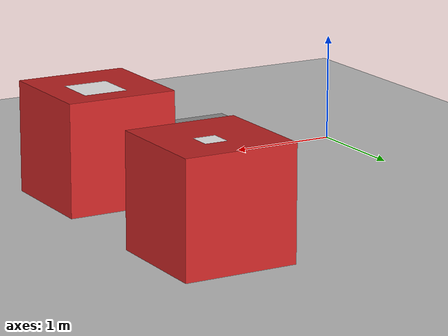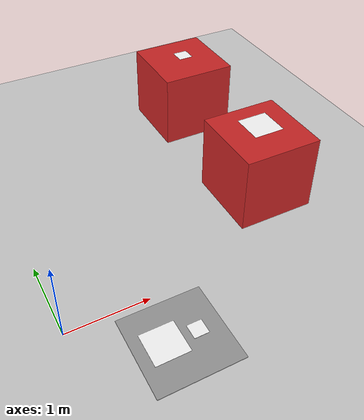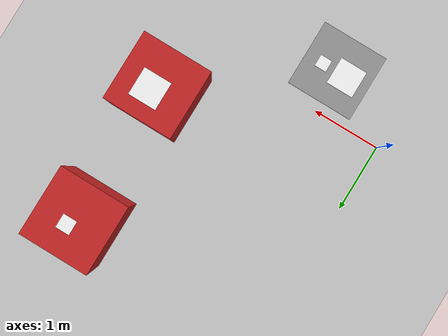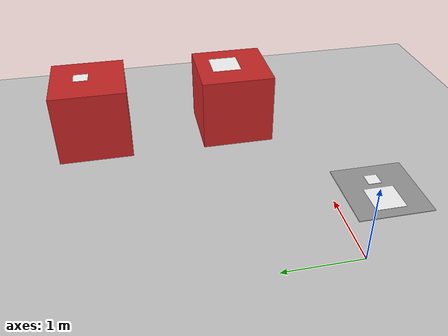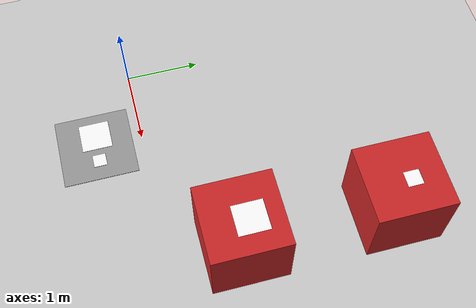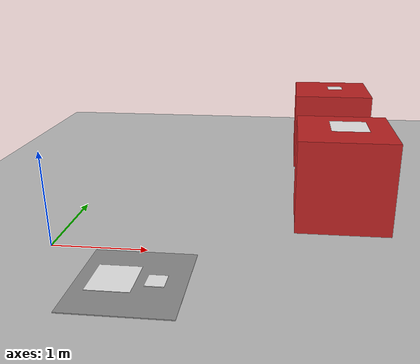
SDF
<sdf version="1.5">
 <world name="default">
  <include><uri>model://sun</uri></include>
  <include><uri>model://ground_plane</uri></include>
  <include><uri>model://asphalt_plane</uri></include>
  <physics name="default_physics" default="0" type="ode">
   <gravity>0 0 -9.8066</gravity>
   <ode>
    <solver>
     <type>quick</type>
     <iters>10</iters>
     <sor>1.3</sor>
     <use_dynamic_moi_rescaling>0</use_dynamic_moi_rescaling>
    </solver>
    <constraints>
     <cfm>0</cfm>
     <erp>0.2</erp>
     <contact_max_correcting_vel>100</contact_max_correcting_vel>
     <contact_surface_layer>0.001</contact_surface_layer>
    </constraints>
   </ode>
   <max_step_size>0.004</max_step_size>
   <real_time_factor>1</real_time_factor>
   <real_time_update_rate>250</real_time_update_rate>
   <magnetic_field>6.0e-6 2.3e-5 -4.2e-5</magnetic_field>
  </physics>
  <model name="unit_box">
   <link name="link">
    <inertial>
     <mass>1</mass>
     <inertia>
      <ixx>0.166667</ixx>
      <ixy>0</ixy>
      <ixz>0</ixz>
      <iyy>0.166667</iyy>
      <iyz>0</iyz>
      <izz>0.166667</izz>
     </inertia>
    </inertial>
    <visual name="ModelPreview_6::link::visual_1">
     <geometry><box><size>1 1 1</size></box></geometry>
     <material>
      <script><name>Gazebo/Red</name><uri>file://media/materials/scripts/gazebo.material</uri></script>
      <shader type="pixel"><normal_map>__default__</normal_map></shader>
      <ambient>1 0.3 0.3 1</ambient>
      <diffuse>1 0.7 0.7 1</diffuse>
      <specular>1 0.01 0.01 1</specular>
      <emissive>1 0 0 1</emissive>
     </material>
    </visual>
    <visual name="visual"><geometry><box><size>1 1 1</size></box></geometry></visual>
    <collision name="collision">
     <geometry><box><size>1 1 1</size></box></geometry>
     <surface>
      <friction>
       <ode><mu>1</mu><mu2>1</mu2><fdir1>0 0 0</fdir1><slip1>0</slip1><slip2>0</slip2></ode>
       <torsional>
        <coefficient>1</coefficient>
        <patch_radius>0</patch_radius>
        <surface_radius>0</surface_radius>
        <use_patch_radius>1</use_patch_radius>
        <ode><slip>0</slip></ode>
       </torsional>
      </friction>
      <bounce><restitution_coefficient>0</restitution_coefficient><threshold>1e+06</threshold></bounce>
      <contact>
       <collide_without_contact>0</collide_without_contact>
       <collide_without_contact_bitmask>1</collide_without_contact_bitmask>
       <collide_bitmask>1</collide_bitmask>
       <ode>
        <soft_cfm>0</soft_cfm>
        <soft_erp>0.2</soft_erp>
        <kp>1e+13</kp>
        <kd>1</kd>
        <max_vel>0.01</max_vel>
        <min_depth>0</min_depth>
       </ode>
       <bullet>
        <split_impulse>1</split_impulse>
        <split_impulse_penetration_threshold>-0.01</split_impulse_penetration_threshold>
        <soft_cfm>0</soft_cfm>
        <soft_erp>0.2</soft_erp>
        <kp>1e+13</kp>
        <kd>1</kd>
       </bullet>
      </contact>
     </surface>
    </collision>
   </link>
   <static>0</static>
   <pose>2.94791 2.90993 0.550001 -2.2e-05 -4e-06 -0.001749</pose>
  </model>
  <model name="aruco_visual_marker_7">
   <pose>3 3 1.05 0 -0 0</pose>
   <link name="marker">
    <visual name="visual">
     <geometry><box><size>0.2 0.2 0.001</size></box></geometry>
     <material>
      <script>
       <uri>model://aruco_visual_marker_7/materials/scripts</uri>
       <uri>model://aruco_visual_marker_7/materials/textures</uri>
       <name>ArucoVisualMarker7/Marker</name>
      </script>
      <ambient>1 1 1 1</ambient>
      <diffuse>1 1 1 1</diffuse>
      <specular>0 0 0 1</specular>
      <emissive>1 1 1 0</emissive>
      <shader type="vertex"><normal_map>__default__</normal_map></shader>
     </material>
    </visual>
    <collision name="collision"><geometry><box><size>0.1778 0.1778 0</size></box></geometry></collision>
   </link>
   <link name="marker_pad">
    <pose frame="marker">0 0 -1e-05 0 -0 0</pose>
    <visual name="visual">
     <geometry><box><size>0.1778 0.1778 0</size></box></geometry>
     <material>
      <lighting>1</lighting>
      <script><uri>file://media/materials/scripts/gazebo.material</uri><name>Gazebo/White</name></script>
      <ambient>0.3 0.3 0.3 1</ambient>
      <diffuse>0.7 0.7 0.7 1</diffuse>
      <specular>0.01 0.01 0.01 1</specular>
      <emissive>1 1 1 0</emissive>
      <shader type="vertex"><normal_map>__default__</normal_map></shader>
     </material>
    </visual>
    <collision name="collision"><geometry><box><size>0.1778 0.1778 0</size></box></geometry></collision>
   </link>
   <joint name="marker_JOINT_marker_pad" type="revolute">
    <parent>marker</parent>
    <child>marker_pad</child>
    <axis>
     <xyz>0 0 1</xyz>
     <limit><upper>0</upper><lower>0</lower></limit>
     <use_parent_model_frame>0</use_parent_model_frame>
     <dynamics><spring_reference>0</spring_reference><spring_stiffness>0</spring_stiffness></dynamics>
    </axis>
   </joint>
   <static>1</static>
   <pose>1.46856 0.501725 0 0 -0 0</pose>
  </model>
  <model name="unit_box_2">
   <link name="link">
    <inertial>
     <mass>1</mass>
     <inertia>
      <ixx>0.166667</ixx>
      <ixy>0</ixy>
      <ixz>0</ixz>
      <iyy>0.166667</iyy>
      <iyz>0</iyz>
      <izz>0.166667</izz>
     </inertia>
    </inertial>
    <visual name="ModelPreview_6::link::visual_1">
     <geometry><box><size>1 1 1</size></box></geometry>
     <material>
      <script><name>Gazebo/Red</name><uri>file://media/materials/scripts/gazebo.material</uri></script>
      <shader type="pixel"><normal_map>__default__</normal_map></shader>
      <ambient>1 0.3 0.3 1</ambient>
      <diffuse>1 0.7 0.7 1</diffuse>
      <specular>1 0.01 0.01 1</specular>
      <emissive>1 0 0 1</emissive>
     </material>
    </visual>
    <visual name="visual"><geometry><box><size>1 1 1</size></box></geometry></visual>
    <collision name="collision">
     <geometry><box><size>1 1 1</size></box></geometry>
     <surface>
      <friction>
       <ode><mu>1</mu><mu2>1</mu2><fdir1>0 0 0</fdir1><slip1>0</slip1><slip2>0</slip2></ode>
       <torsional>
        <coefficient>1</coefficient>
        <patch_radius>0</patch_radius>
        <surface_radius>0</surface_radius>
        <use_patch_radius>1</use_patch_radius>
        <ode><slip>0</slip></ode>
       </torsional>
      </friction>
      <bounce><restitution_coefficient>0</restitution_coefficient><threshold>1e+06</threshold></bounce>
      <contact>
       <collide_without_contact>0</collide_without_contact>
       <collide_without_contact_bitmask>1</collide_without_contact_bitmask>
       <collide_bitmask>1</collide_bitmask>
       <ode>
        <soft_cfm>0</soft_cfm>
        <soft_erp>0.2</soft_erp>
        <kp>1e+13</kp>
        <kd>1</kd>
        <max_vel>0.01</max_vel>
        <min_depth>0</min_depth>
       </ode>
       <bullet>
        <split_impulse>1</split_impulse>
        <split_impulse_penetration_threshold>-0.01</split_impulse_penetration_threshold>
        <soft_cfm>0</soft_cfm>
        <soft_erp>0.2</soft_erp>
        <kp>1e+13</kp>
        <kd>1</kd>
       </bullet>
      </contact>
     </surface>
    </collision>
   </link>
   <static>0</static>
   <pose>2.94791 0.909933 0.550001 -2.2e-05 -4e-06 -0.001749</pose>
  </model>
  <model name="aruco_visual_marker_7_2">
   <pose>3 1 1.05 0 -0 0</pose>
   <link name="marker">
    <visual name="visual">
     <geometry><box><size>0.4 0.4 0.001</size></box></geometry>
     <material>
      <script>
       <uri>model://aruco_visual_marker_7/materials/scripts</uri>
       <uri>model://aruco_visual_marker_7/materials/textures</uri>
       <name>ArucoVisualMarker7/Marker</name>
      </script>
      <ambient>1 1 1 1</ambient>
      <diffuse>1 1 1 1</diffuse>
      <specular>0 0 0 1</specular>
      <emissive>1 1 1 0</emissive>
      <shader type="vertex"><normal_map>__default__</normal_map></shader>
     </material>
    </visual>
    <collision name="collision"><geometry><box><size>0.1778 0.1778 0</size></box></geometry></collision>
   </link>
   <link name="marker_pad_2">
    <pose frame="marker">0 0 -1e-05 0 -0 0</pose>
    <visual name="visual">
     <geometry><box><size>0.1778 0.1778 0</size></box></geometry>
     <material>
      <lighting>1</lighting>
      <script><uri>file://media/materials/scripts/gazebo.material</uri><name>Gazebo/White</name></script>
      <ambient>0.3 0.3 0.3 1</ambient>
      <diffuse>0.7 0.7 0.7 1</diffuse>
      <specular>0.01 0.01 0.01 1</specular>
      <emissive>1 1 1 0</emissive>
      <shader type="vertex"><normal_map>__default__</normal_map></shader>
     </material>
    </visual>
    <collision name="collision"><geometry><box><size>0.1778 0.1778 0</size></box></geometry></collision>
   </link>
   <joint name="marker_JOINT_marker_pad_2" type="revolute">
    <parent>marker</parent>
    <child>marker_pad</child>
    <axis>
     <xyz>0 0 1</xyz>
     <limit><upper>0</upper><lower>0</lower></limit>
     <use_parent_model_frame>0</use_parent_model_frame>
     <dynamics><spring_reference>0</spring_reference><spring_stiffness>0</spring_stiffness></dynamics>
    </axis>
   </joint>
   <static>1</static>
   <pose>1.46856 0.501725 0 0 -0 0</pose>
  </model>
  <model name="aruco_visual_marker_3">
   <link name="marker">
    <visual name="visual">
     <geometry><box><size>0.40894 0.40894 0.00398573</size></box></geometry>
     <material>
      <script>
       <uri>model://aruco_visual_marker_3/materials/scripts</uri>
       <uri>model://aruco_visual_marker_3/materials/textures</uri>
       <name>ArucoVisualMarker3/Marker</name>
      </script>
      <ambient>1 1 1 1</ambient>
      <diffuse>1 1 1 1</diffuse>
      <specular>0 0 0 1</specular>
      <emissive>1 1 1 0</emissive>
      <shader type="vertex"><normal_map>__default__</normal_map></shader>
     </material>
    </visual>
    <collision name="collision">
     <geometry><box><size>0.40894 0.40894 0.00398573</size></box></geometry>
    </collision>
   </link>
   <link name="marker_pad">
    <pose relative_to="marker">0 0 -1e-05 0 -0 0</pose>
    <visual name="visual">
     <geometry><box><size>0.40894 0.40894 0.00398573</size></box></geometry>
     <material>
      <lighting>1</lighting>
      <script><uri>file://media/materials/scripts/gazebo.material</uri><name>Gazebo/White</name></script>
      <ambient>0.3 0.3 0.3 1</ambient>
      <diffuse>0.7 0.7 0.7 1</diffuse>
      <specular>0.01 0.01 0.01 1</specular>
      <emissive>1 1 1 0</emissive>
      <shader type="vertex"><normal_map>__default__</normal_map></shader>
     </material>
    </visual>
    <collision name="collision">
     <geometry><box><size>0.40894 0.40894 0.00398573</size></box></geometry>
    </collision>
   </link>
   <joint name="marker_JOINT_marker_pad" type="revolute">
    <parent>marker</parent>
    <child>marker_pad</child>
    <axis>
     <xyz>0 0 1</xyz>
     <limit><upper>0</upper><lower>0</lower></limit>
     <dynamics><spring_reference>0</spring_reference><spring_stiffness>0</spring_stiffness></dynamics>
    </axis>
   </joint>
   <static>1</static>
   <pose>0.866161 -0.616978 0.065668 0 -0 0</pose>
  </model>
  <model name="unit_box_0">
   <pose>1.02863 -0.634658 0.054604 0 0 -0.000707</pose>
   <link name="link">
    <inertial>
     <mass>1</mass>
     <inertia>
      <ixx>0.166667</ixx>
      <ixy>0</ixy>
      <ixz>0</ixz>
      <iyy>0.166667</iyy>
      <iyz>0</iyz>
      <izz>0.166667</izz>
     </inertia>
    </inertial>
    <collision name="collision"><geometry><box><size>1 1 0.00944228</size></box></geometry></collision>
    <visual name="visual">
     <geometry><box><size>1 1 0.00944228</size></box></geometry>
     <material>
      <script><name>Gazebo/Grey</name><uri>file://media/materials/scripts/gazebo.material</uri></script>
     </material>
    </visual>
   </link>
  </model>
  <model name="aruco_visual_marker_6">
   <link name="marker">
    <visual name="visual">
     <geometry><box><size>0.1778 0.1778 0.0110233</size></box></geometry>
     <material>
      <script>
       <uri>model://aruco_visual_marker_6/materials/scripts</uri>
       <uri>model://aruco_visual_marker_6/materials/textures</uri>
       <name>ArucoVisualMarker6/Marker</name>
      </script>
      <ambient>1 1 1 1</ambient>
      <diffuse>1 1 1 1</diffuse>
      <specular>0 0 0 1</specular>
      <emissive>1 1 1 0</emissive>
      <shader type="vertex"><normal_map>__default__</normal_map></shader>
     </material>
    </visual>
    <collision name="collision"><geometry><box><size>0.1778 0.1778 0.0110233</size></box></geometry></collision>
   </link>
   <link name="marker_pad">
    <pose relative_to="marker">0 0 -1e-05 0 -0 0</pose>
    <visual name="visual">
     <geometry><box><size>0.1778 0.1778 0.0110233</size></box></geometry>
     <material>
      <lighting>1</lighting>
      <script><uri>file://media/materials/scripts/gazebo.material</uri><name>Gazebo/White</name></script>
      <ambient>0.3 0.3 0.3 1</ambient>
      <diffuse>0.7 0.7 0.7 1</diffuse>
      <specular>0.01 0.01 0.01 1</specular>
      <emissive>1 1 1 0</emissive>
      <shader type="vertex"><normal_map>__default__</normal_map></shader>
     </material>
    </visual>
    <collision name="collision"><geometry><box><size>0.1778 0.1778 0.0110233</size></box></geometry></collision>
   </link>
   <joint name="marker_JOINT_marker_pad" type="revolute">
    <parent>marker</parent>
    <child>marker_pad</child>
    <axis>
     <xyz>0 0 1</xyz>
     <limit><upper>0</upper><lower>0</lower></limit>
     <dynamics><spring_reference>0</spring_reference><spring_stiffness>0</spring_stiffness></dynamics>
    </axis>
   </joint>
   <static>1</static>
   <pose>1.24818 -0.620968 0.06 0 -0 0</pose>
  </model>
 </world>
</sdf>
